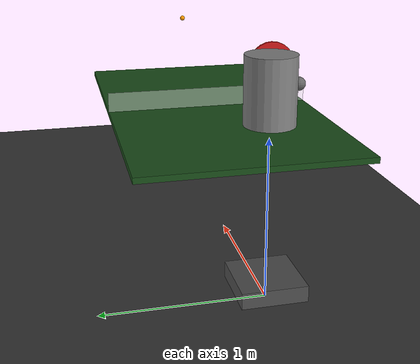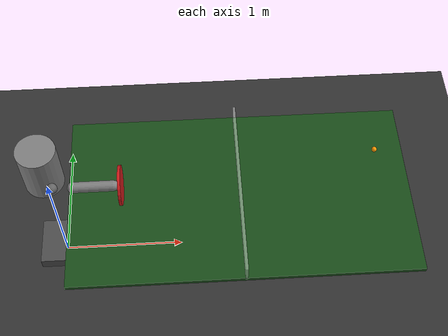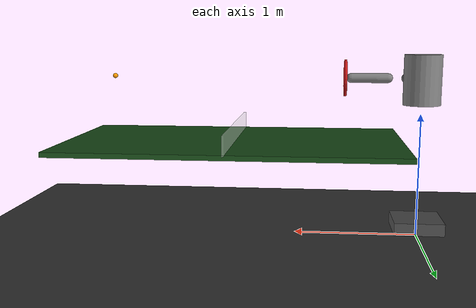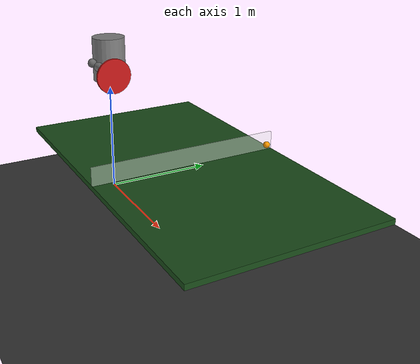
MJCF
<mujoco model="h1_super_stable">
    <compiler angle="radian" meshdir="assets/" autolimits="true"/>
    <option timestep="0.001" integrator="RK4">
        <flag energy="enable" contact="enable"/>
    </option>

    <worldbody>
        <light pos="0 0 3" dir="0 0 -1" diffuse="1 1 1"/>
        <geom name="floor" type="plane" size="5 5 0.1" rgba="0.2 0.2 0.2 1"/>
        <body name="table" pos="1.5 0 0.76">
            <geom type="box" size="1.37 0.76 0.02" rgba="0.1 0.3 0.1 1" friction="0.1"/>
            <body name="net" pos="0 0 0.08"><geom type="box" size="0.01 0.76 0.08" rgba="1 1 1 0.4"/></body>
        </body>

        <body name="base" pos="0 0 0.1">
            <geom type="box" size="0.2 0.2 0.05" rgba="0.3 0.3 0.3 1"/>
            <joint name="y_slide_joint" type="slide" axis="0 1 0" range="-0.8 0.8" damping="1000" armature="0.5"/>
            <body name="torso" pos="0 0 1.18">
                <joint name="waist_yaw_joint" type="hinge" axis="0 0 1" range="-1.5 1.5" damping="500" armature="0.2"/>
                <geom type="cylinder" size="0.15 0.2" rgba="0.5 0.5 0.5 1"/>
                <body name="right_arm_root" pos="0.1 -0.2 0">
                    <geom type="sphere" size="0.04" rgba="0.4 0.4 0.4 1"/>
                    <joint name="r_joint_yaw" type="hinge" axis="0 0 1" range="-2.0 2.0" damping="100"/>
                    <body name="r_shoulder" pos="0 0 0">
                        <geom type="sphere" size="0.04" rgba="0.4 0.4 0.4 1"/>
                        <joint name="r_joint_pitch" type="hinge" axis="0 1 0" range="-2.0 2.0" damping="100"/>
                        <body name="r_elbow" pos="0.3 0 0">
                            <geom type="capsule" size="0.04 0.15" euler="0 1.57 0" rgba="0.5 0.5 0.5 1"/>
                            <joint name="r_joint2" type="hinge" axis="0 1 0" range="-2.0 2.0" damping="100"/>
                            <body name="paddle_link" pos="0.2 0 0">
                                <joint name="r_slide" type="slide" axis="1 0 0" range="0 0.4" damping="50"/>
                                <geom name="paddle" type="cylinder" size="0.15 0.01" euler="0 1.57 0" rgba="0.8 0.1 0.1 1" friction="1.0"/>
                            </body>
                        </body>
                    </body>
                </body>
            </body>
        </body>

        <body name="ball" pos="2.5 0 1.3">
            <joint name="ball_joint" type="free"/>
            <geom name="ball_geom" type="sphere" size="0.02" rgba="1 0.6 0 1" friction="0.1"/>
        </body>
    </worldbody>

    <actuator>
        <general name="s_rot"  joint="waist_yaw_joint" gainprm="8000" biasprm="0 -8000" biastype="affine" forcerange="-200 200" forcelimited="true" dyntype="filter" dynprm="0.1"/>
        <general name="s_base" joint="y_slide_joint"  gainprm="12000" biasprm="0 -12000" biastype="affine" forcerange="-400 400" forcelimited="true" dyntype="filter" dynprm="0.1"/>
        <general name="s0"     joint="r_joint_yaw"     gainprm="4000"  biasprm="0 -4000"  biastype="affine" forcerange="-100 100" forcelimited="true" dyntype="filter" dynprm="0.1"/>
        <general name="s1"     joint="r_joint_pitch"   gainprm="4000"  biasprm="0 -4000"  biastype="affine" forcerange="-100 100" forcelimited="true" dyntype="filter" dynprm="0.1"/>
        <general name="s2"     joint="r_joint2"        gainprm="2000"  biasprm="0 -2000"  biastype="affine" forcerange="-80 80"   forcelimited="true" dyntype="filter" dynprm="0.1"/>
        <general name="s3"     joint="r_slide"         gainprm="2000"  biasprm="0 -2000"  biastype="affine" forcerange="-80 80"   forcelimited="true" dyntype="filter" dynprm="0.1"/>
    </actuator>
</mujoco>
